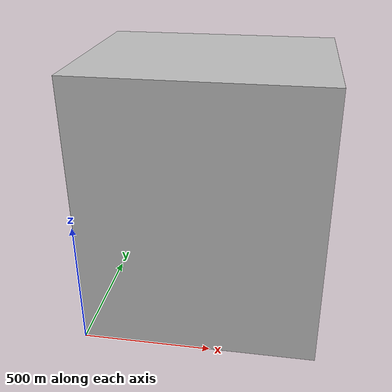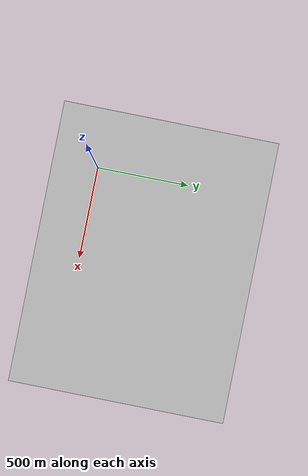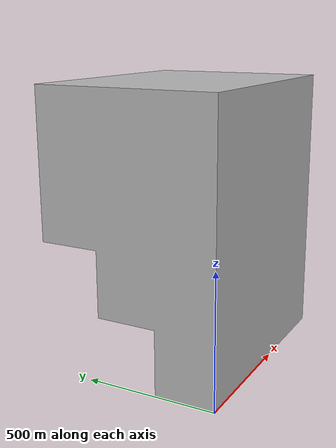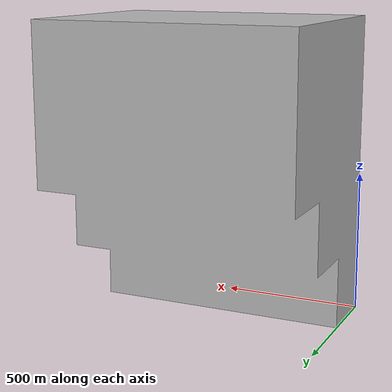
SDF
<?xml version="1.0" ?>
<sdf version="1.6">
  <model name="escalera_base">
  <pose>2 0 0 0 0 0</pose>
    <static>true</static>
    <link name="escalera_link">
      <visual name="escalera_visual">
        <geometry>
          <mesh>
            <uri>model://escalera_base/meshes/EscaleraBase.STL</uri>
          </mesh>
        </geometry>
      </visual>
      <collision name="escalera_collision">
        <geometry>
          <mesh>
            <uri>model://escalera_base/meshes/EscaleraBase.STL</uri>
          </mesh>
        </geometry>
      </collision>
    </link>
  </model>
</sdf>
